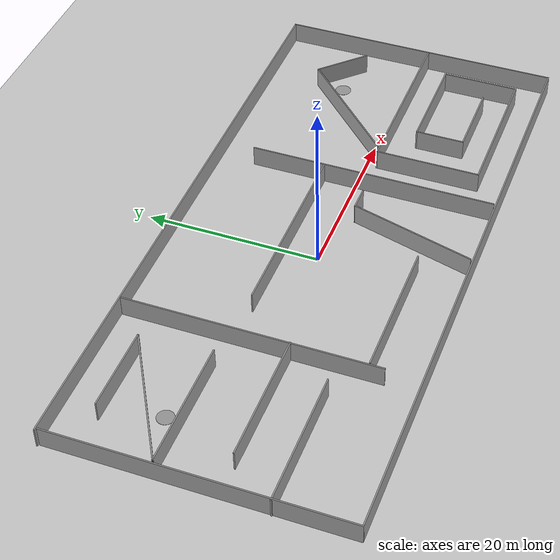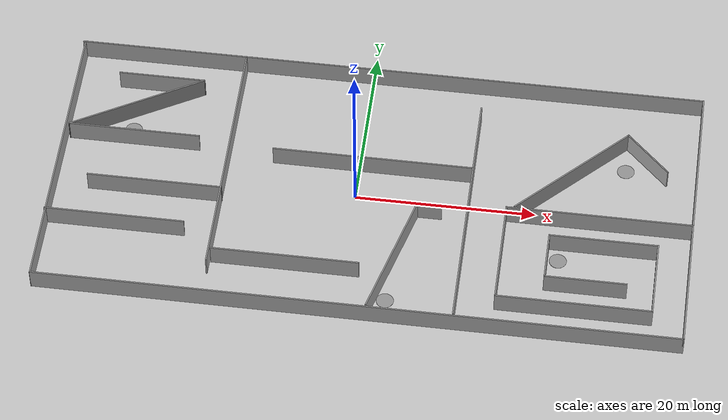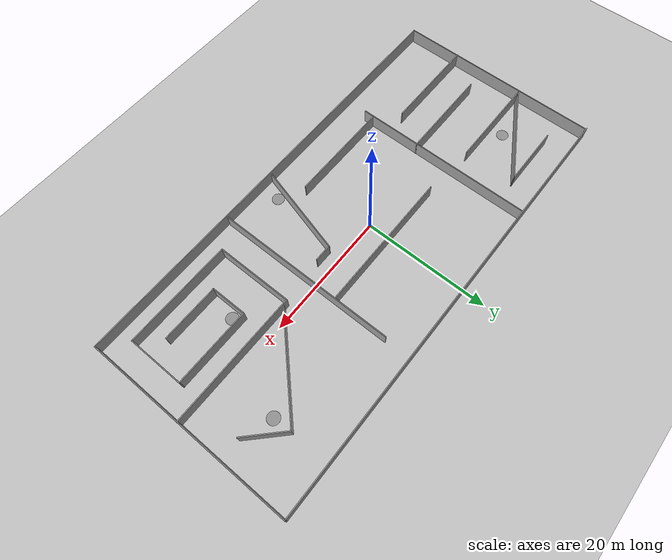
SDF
<sdf version="1.6">
 <world name="default">
  <light name="sun" type="directional">
   <pose>0 0 10 0 -0 0</pose>
   <diffuse>0.8 0.8 0.8 1</diffuse>
   <specular>0.2 0.2 0.2 1</specular>
   <attenuation>
    <range>1000</range>
    <constant>0.9</constant>
    <linear>0.01</linear>
    <quadratic>0.001</quadratic>
   </attenuation>
   <direction>-0.5 0.1 -0.9</direction>
  </light>
  <model name="ground_plane">
   <static>1</static>
   <link name="link">
    <collision name="collision">
     <geometry><plane><normal>0 0 1</normal><size>100 100</size></plane></geometry>
     <surface>
      <contact><collide_bitmask>65535</collide_bitmask></contact>
      <friction><ode><mu>100</mu><mu2>50</mu2></ode></friction>
     </surface>
    </collision>
    <visual name="visual">
     <cast_shadows>0</cast_shadows>
     <geometry><plane><normal>0 0 1</normal><size>100 100</size></plane></geometry>
     <material>
      <script><uri>file://media/materials/scripts/gazebo.material</uri><name>Gazebo/Grey</name></script>
     </material>
    </visual>
   </link>
  </model>
  <gravity>0 0 -9.8</gravity>
  <magnetic_field>6e-06 2.3e-05 -4.2e-05</magnetic_field>
  <atmosphere type="adiabatic"/>
  <physics name="default_physics" default="0" type="ode">
   <max_step_size>0.001</max_step_size>
   <real_time_factor>1</real_time_factor>
   <real_time_update_rate>1000</real_time_update_rate>
  </physics>
  <scene><ambient>0.4 0.4 0.4 1</ambient><background>0.7 0.7 0.7 1</background><shadows>1</shadows></scene>
  <audio><device>default</device></audio>
  <spherical_coordinates>
   <surface_model>EARTH_WGS84</surface_model>
   <latitude_deg>0</latitude_deg>
   <longitude_deg>0</longitude_deg>
   <elevation>0</elevation>
   <heading_deg>0</heading_deg>
  </spherical_coordinates>
  <model name="practice_base">
   <pose>1.95086 0.063622 0 0 -0 0</pose>
   <link name="Wall_0">
    <collision name="Wall_0_Collision">
     <geometry><box><size>33 0.15 2.5</size></box></geometry>
     <pose>0 0 1.25 0 -0 0</pose>
    </collision>
    <visual name="Wall_0_Visual">
     <pose>0 0 1.25 0 -0 0</pose>
     <geometry><box><size>33 0.15 2.5</size></box></geometry>
     <material>
      <script><uri>file://media/materials/scripts/gazebo.material</uri><name>Gazebo/Grey</name></script>
      <ambient>1 1 1 1</ambient>
     </material>
     <meta><layer>0</layer></meta>
    </visual>
    <pose>-35.0767 -0.125 0 0 -0 -1.5708</pose>
   </link>
   <link name="Wall_1">
    <collision name="Wall_1_Collision">
     <geometry><box><size>70.5 0.15 2.5</size></box></geometry>
     <pose>0 0 1.25 0 -0 0</pose>
    </collision>
    <visual name="Wall_1_Visual">
     <pose>0 0 1.25 0 -0 0</pose>
     <geometry><box><size>70.5 0.15 2.5</size></box></geometry>
     <material>
      <script><uri>file://media/materials/scripts/gazebo.material</uri><name>Gazebo/Grey</name></script>
      <ambient>1 1 1 1</ambient>
     </material>
     <meta><layer>0</layer></meta>
    </visual>
    <pose>0.098313 -16.55 0 0 -0 0</pose>
   </link>
   <link name="Wall_11">
    <collision name="Wall_11_Collision">
     <geometry><box><size>14.75 0.15 2.5</size></box></geometry>
     <pose>0 0 1.25 0 -0 0</pose>
    </collision>
    <visual name="Wall_11_Visual">
     <pose>0 0 1.25 0 -0 0</pose>
     <geometry><box><size>14.75 0.15 2.5</size></box></geometry>
     <material>
      <script><uri>file://media/materials/scripts/gazebo.material</uri><name>Gazebo/Grey</name></script>
      <ambient>1 1 1 1</ambient>
     </material>
     <meta><layer>0</layer></meta>
    </visual>
    <pose>-27.3925 4.41999 0 0 -0 0</pose>
   </link>
   <link name="Wall_13">
    <collision name="Wall_13_Collision">
     <geometry><box><size>15 0.15 2.5</size></box></geometry>
     <pose>0 0 1.25 0 -0 0</pose>
    </collision>
    <visual name="Wall_13_Visual">
     <pose>0 0 1.25 0 -0 0</pose>
     <geometry><box><size>15 0.15 2.5</size></box></geometry>
     <material>
      <script><uri>file://media/materials/scripts/gazebo.material</uri><name>Gazebo/Grey</name></script>
      <ambient>1 1 1 1</ambient>
     </material>
     <meta><layer>0</layer></meta>
    </visual>
    <pose>-23.9329 -2.44345 0 0 -0 3.14159</pose>
   </link>
   <link name="Wall_15">
    <collision name="Wall_15_Collision">
     <geometry><box><size>15.5 0.15 2.5</size></box></geometry>
     <pose>0 0 1.25 0 -0 0</pose>
    </collision>
    <visual name="Wall_15_Visual">
     <pose>0 0 1.25 0 -0 0</pose>
     <geometry><box><size>15.5 0.15 2.5</size></box></geometry>
     <material>
      <script><uri>file://media/materials/scripts/gazebo.material</uri><name>Gazebo/Grey</name></script>
      <ambient>1 1 1 1</ambient>
     </material>
     <meta><layer>0</layer></meta>
    </visual>
    <pose>-27.5128 -7.67947 0 0 -0 0</pose>
   </link>
   <link name="Wall_17">
    <collision name="Wall_17_Collision">
     <geometry><box><size>28.75 0.15 2.5</size></box></geometry>
     <pose>0 0 1.25 0 -0 0</pose>
    </collision>
    <visual name="Wall_17_Visual">
     <pose>0 0 1.25 0 -0 0</pose>
     <geometry><box><size>28.75 0.15 2.5</size></box></geometry>
     <material>
      <script><uri>file://media/materials/scripts/gazebo.material</uri><name>Gazebo/Grey</name></script>
      <ambient>1 1 1 1</ambient>
     </material>
     <meta><layer>0</layer></meta>
    </visual>
    <pose>10.6628 -1.94107 0 0 -0 1.5708</pose>
   </link>
   <link name="Wall_19">
    <collision name="Wall_19_Collision">
     <geometry><box><size>15 0.15 2.5</size></box></geometry>
     <pose>0 0 1.25 0 -0 0</pose>
    </collision>
    <visual name="Wall_19_Visual">
     <pose>0 0 1.25 0 -0 0</pose>
     <geometry><box><size>15 0.15 2.5</size></box></geometry>
     <material>
      <script><uri>file://media/materials/scripts/gazebo.material</uri><name>Gazebo/Grey</name></script>
      <ambient>1 1 1 1</ambient>
     </material>
     <meta><layer>0</layer></meta>
    </visual>
    <pose>3.2446 -9.06907 0 0 -0 1.309</pose>
   </link>
   <link name="Wall_2">
    <collision name="Wall_2_Collision">
     <geometry><box><size>33.25 0.15 2.5</size></box></geometry>
     <pose>0 0 1.25 0 -0 0</pose>
    </collision>
    <visual name="Wall_2_Visual">
     <pose>0 0 1.25 0 -0 0</pose>
     <geometry><box><size>33.25 0.15 2.5</size></box></geometry>
     <material>
      <script><uri>file://media/materials/scripts/gazebo.material</uri><name>Gazebo/Grey</name></script>
      <ambient>1 1 1 1</ambient>
     </material>
     <meta><layer>0</layer></meta>
    </visual>
    <pose>35.2733 0 0 0 -0 1.5708</pose>
   </link>
   <link name="Wall_20">
    <collision name="Wall_20_Collision">
     <geometry><box><size>2.75 0.15 2.5</size></box></geometry>
     <pose>0 0 1.25 0 -0 0</pose>
    </collision>
    <visual name="Wall_20_Visual">
     <pose>0 0 1.25 0 -0 0</pose>
     <geometry><box><size>2.75 0.15 2.5</size></box></geometry>
     <material>
      <script><uri>file://media/materials/scripts/gazebo.material</uri><name>Gazebo/Grey</name></script>
      <ambient>1 1 1 1</ambient>
     </material>
     <meta><layer>0</layer></meta>
    </visual>
    <pose>6.46633 -1.89707 0 0 -0 0</pose>
   </link>
   <link name="Wall_22">
    <collision name="Wall_22_Collision">
     <geometry><box><size>16.25 0.15 2.5</size></box></geometry>
     <pose>0 0 1.25 0 -0 0</pose>
    </collision>
    <visual name="Wall_22_Visual">
     <pose>0 0 1.25 0 -0 0</pose>
     <geometry><box><size>16.25 0.15 2.5</size></box></geometry>
     <material>
      <script><uri>file://media/materials/scripts/gazebo.material</uri><name>Gazebo/Grey</name></script>
      <ambient>1 1 1 1</ambient>
     </material>
     <meta><layer>0</layer></meta>
    </visual>
    <pose>-8.24564 -10.8635 0 0 -0 0</pose>
   </link>
   <link name="Wall_24">
    <collision name="Wall_24_Collision">
     <geometry><box><size>22.25 0.15 2.5</size></box></geometry>
     <pose>0 0 1.25 0 -0 0</pose>
    </collision>
    <visual name="Wall_24_Visual">
     <pose>0 0 1.25 0 -0 0</pose>
     <geometry><box><size>22.25 0.15 2.5</size></box></geometry>
     <material>
      <script><uri>file://media/materials/scripts/gazebo.material</uri><name>Gazebo/Grey</name></script>
      <ambient>1 1 1 1</ambient>
     </material>
     <meta><layer>0</layer></meta>
    </visual>
    <pose>-0.52871 3.71242 0 0 -0 3.14159</pose>
   </link>
   <link name="Wall_26">
    <collision name="Wall_26_Collision">
     <geometry><box><size>20.5 0.15 2.5</size></box></geometry>
     <pose>0 0 1.25 0 -0 0</pose>
    </collision>
    <visual name="Wall_26_Visual">
     <pose>0 0 1.25 0 -0 0</pose>
     <geometry><box><size>20.5 0.15 2.5</size></box></geometry>
     <material>
      <script><uri>file://media/materials/scripts/gazebo.material</uri><name>Gazebo/Grey</name></script>
      <ambient>1 1 1 1</ambient>
     </material>
     <meta><layer>0</layer></meta>
    </visual>
    <pose>25.0405 -1.24058 0 0 -0 3.14159</pose>
   </link>
   <link name="Wall_27">
    <collision name="Wall_27_Collision">
     <geometry><box><size>12.25 0.15 2.5</size></box></geometry>
     <pose>0 0 1.25 0 -0 0</pose>
    </collision>
    <visual name="Wall_27_Visual">
     <pose>0 0 1.25 0 -0 0</pose>
     <geometry><box><size>12.25 0.15 2.5</size></box></geometry>
     <material>
      <script><uri>file://media/materials/scripts/gazebo.material</uri><name>Gazebo/Grey</name></script>
      <ambient>1 1 1 1</ambient>
     </material>
     <meta><layer>0</layer></meta>
    </visual>
    <pose>14.8655 -7.29058 0 0 -0 -1.5708</pose>
   </link>
   <link name="Wall_28">
    <collision name="Wall_28_Collision">
     <geometry><box><size>17 0.15 2.5</size></box></geometry>
     <pose>0 0 1.25 0 -0 0</pose>
    </collision>
    <visual name="Wall_28_Visual">
     <pose>0 0 1.25 0 -0 0</pose>
     <geometry><box><size>17 0.15 2.5</size></box></geometry>
     <material>
      <script><uri>file://media/materials/scripts/gazebo.material</uri><name>Gazebo/Grey</name></script>
      <ambient>1 1 1 1</ambient>
     </material>
     <meta><layer>0</layer></meta>
    </visual>
    <pose>23.2905 -13.3406 0 0 -0 0</pose>
   </link>
   <link name="Wall_29">
    <collision name="Wall_29_Collision">
     <geometry><box><size>9 0.15 2.5</size></box></geometry>
     <pose>0 0 1.25 0 -0 0</pose>
    </collision>
    <visual name="Wall_29_Visual">
     <pose>0 0 1.25 0 -0 0</pose>
     <geometry><box><size>9 0.15 2.5</size></box></geometry>
     <material>
      <script><uri>file://media/materials/scripts/gazebo.material</uri><name>Gazebo/Grey</name></script>
      <ambient>1 1 1 1</ambient>
     </material>
     <meta><layer>0</layer></meta>
    </visual>
    <pose>31.7155 -8.91558 0 0 -0 1.5708</pose>
   </link>
   <link name="Wall_30">
    <collision name="Wall_30_Collision">
     <geometry><box><size>12 0.15 2.5</size></box></geometry>
     <pose>0 0 1.25 0 -0 0</pose>
    </collision>
    <visual name="Wall_30_Visual">
     <pose>0 0 1.25 0 -0 0</pose>
     <geometry><box><size>12 0.15 2.5</size></box></geometry>
     <material>
      <script><uri>file://media/materials/scripts/gazebo.material</uri><name>Gazebo/Grey</name></script>
      <ambient>1 1 1 1</ambient>
     </material>
     <meta><layer>0</layer></meta>
    </visual>
    <pose>25.7905 -4.49058 0 0 -0 3.14159</pose>
   </link>
   <link name="Wall_31">
    <collision name="Wall_31_Collision">
     <geometry><box><size>5.75 0.15 2.5</size></box></geometry>
     <pose>0 0 1.25 0 -0 0</pose>
    </collision>
    <visual name="Wall_31_Visual">
     <pose>0 0 1.25 0 -0 0</pose>
     <geometry><box><size>5.75 0.15 2.5</size></box></geometry>
     <material>
      <script><uri>file://media/materials/scripts/gazebo.material</uri><name>Gazebo/Grey</name></script>
      <ambient>1 1 1 1</ambient>
     </material>
     <meta><layer>0</layer></meta>
    </visual>
    <pose>19.8655 -7.29058 0 0 -0 -1.5708</pose>
   </link>
   <link name="Wall_32">
    <collision name="Wall_32_Collision">
     <geometry><box><size>9 0.15 2.5</size></box></geometry>
     <pose>0 0 1.25 0 -0 0</pose>
    </collision>
    <visual name="Wall_32_Visual">
     <pose>0 0 1.25 0 -0 0</pose>
     <geometry><box><size>9 0.15 2.5</size></box></geometry>
     <material>
      <script><uri>file://media/materials/scripts/gazebo.material</uri><name>Gazebo/Grey</name></script>
      <ambient>1 1 1 1</ambient>
     </material>
     <meta><layer>0</layer></meta>
    </visual>
    <pose>24.2905 -10.0906 0 0 -0 0</pose>
   </link>
   <link name="Wall_34">
    <collision name="Wall_34_Collision">
     <geometry><box><size>16.5 0.15 2.5</size></box></geometry>
     <pose>0 0 1.25 0 -0 0</pose>
    </collision>
    <visual name="Wall_34_Visual">
     <pose>0 0 1.25 0 -0 0</pose>
     <geometry><box><size>16.5 0.15 2.5</size></box></geometry>
     <material>
      <script><uri>file://media/materials/scripts/gazebo.material</uri><name>Gazebo/Grey</name></script>
      <ambient>1 1 1 1</ambient>
     </material>
     <meta><layer>0</layer></meta>
    </visual>
    <pose>21.5379 4.75229 0 0 -0 0.785398</pose>
   </link>
   <link name="Wall_35">
    <collision name="Wall_35_Collision">
     <geometry><box><size>6.75 0.15 2.5</size></box></geometry>
     <pose>0 0 1.25 0 -0 0</pose>
    </collision>
    <visual name="Wall_35_Visual">
     <pose>0 0 1.25 0 -0 0</pose>
     <geometry><box><size>6.75 0.15 2.5</size></box></geometry>
     <material>
      <script><uri>file://media/materials/scripts/gazebo.material</uri><name>Gazebo/Grey</name></script>
      <ambient>1 1 1 1</ambient>
     </material>
     <meta><layer>0</layer></meta>
    </visual>
    <pose>29.652 8.19944 0 0 -0 -0.785398</pose>
   </link>
   <link name="Wall_4">
    <collision name="Wall_4_Collision">
     <geometry><box><size>70.5 0.15 2.5</size></box></geometry>
     <pose>0 0 1.25 0 -0 0</pose>
    </collision>
    <visual name="Wall_4_Visual">
     <pose>0 0 1.25 0 -0 0</pose>
     <geometry><box><size>70.5 0.15 2.5</size></box></geometry>
     <material>
      <script><uri>file://media/materials/scripts/gazebo.material</uri><name>Gazebo/Grey</name></script>
      <ambient>1 1 1 1</ambient>
     </material>
     <meta><layer>0</layer></meta>
    </visual>
    <pose>-0.098311 16.5433 0 0 -0 0</pose>
   </link>
   <link name="Wall_6">
    <collision name="Wall_6_Collision">
     <geometry><box><size>29 0.15 2.5</size></box></geometry>
     <pose>0 0 1.25 0 -0 0</pose>
    </collision>
    <visual name="Wall_6_Visual">
     <pose>0 0 1.25 0 -0 0</pose>
     <geometry><box><size>29 0.15 2.5</size></box></geometry>
     <material>
      <script><uri>file://media/materials/scripts/gazebo.material</uri><name>Gazebo/Grey</name></script>
      <ambient>1 1 1 1</ambient>
     </material>
     <meta><layer>0</layer></meta>
    </visual>
    <pose>-16.5581 1.95561 0 0 -0 -1.5708</pose>
   </link>
   <link name="Wall_8">
    <collision name="Wall_8_Collision">
     <geometry><box><size>16.25 0.15 2.5</size></box></geometry>
     <pose>0 0 1.25 0 -0 0</pose>
    </collision>
    <visual name="Wall_8_Visual">
     <pose>0 0 1.25 0 -0 0</pose>
     <geometry><box><size>16.25 0.15 2.5</size></box></geometry>
     <material>
      <script><uri>file://media/materials/scripts/gazebo.material</uri><name>Gazebo/Grey</name></script>
      <ambient>1 1 1 1</ambient>
     </material>
     <meta><layer>0</layer></meta>
    </visual>
    <pose>-27.721 8.44499 0 0 -0 0.523599</pose>
   </link>
   <link name="Wall_9">
    <collision name="Wall_9_Collision">
     <geometry><box><size>9.75 0.15 2.5</size></box></geometry>
     <pose>0 0 1.25 0 -0 0</pose>
    </collision>
    <visual name="Wall_9_Visual">
     <pose>0 0 1.25 0 -0 0</pose>
     <geometry><box><size>9.75 0.15 2.5</size></box></geometry>
     <material>
      <script><uri>file://media/materials/scripts/gazebo.material</uri><name>Gazebo/Grey</name></script>
      <ambient>1 1 1 1</ambient>
     </material>
     <meta><layer>0</layer></meta>
    </visual>
    <pose>-25.5495 12.47 0 0 -0 3.14159</pose>
   </link>
   <static>1</static>
  </model>
  <model name="unit_cylinder">
   <pose>-25.9165 6.43731 0.009378 0 -0 0</pose>
   <link name="link">
    <inertial>
     <mass>1</mass>
     <inertia><ixx>0.145833</ixx><ixy>0</ixy><ixz>0</ixz><iyy>0.145833</iyy><iyz>0</iyz><izz>0.125</izz></inertia>
    </inertial>
    <collision name="collision">
     <geometry><cylinder><radius>0.954015</radius><length>0.018757</length></cylinder></geometry>
    </collision>
    <visual name="visual">
     <geometry><cylinder><radius>0.954015</radius><length>0.018757</length></cylinder></geometry>
     <material>
      <script><name>Gazebo/Grey</name><uri>file://media/materials/scripts/gazebo.material</uri></script>
     </material>
    </visual>
   </link>
  </model>
  <model name="unit_cylinder_clone">
   <pose>5.00973 -13.6753 0.009378 0 -0 0.103014</pose>
   <link name="link">
    <inertial>
     <mass>1</mass>
     <inertia><ixx>0.145833</ixx><ixy>0</ixy><ixz>0</ixz><iyy>0.145833</iyy><iyz>0</iyz><izz>0.125</izz></inertia>
    </inertial>
    <collision name="collision">
     <geometry><cylinder><radius>0.954015</radius><length>0.0187567</length></cylinder></geometry>
    </collision>
    <visual name="visual">
     <geometry><cylinder><radius>0.954015</radius><length>0.0187567</length></cylinder></geometry>
     <material>
      <script><name>Gazebo/Grey</name><uri>file://media/materials/scripts/gazebo.material</uri></script>
     </material>
    </visual>
   </link>
  </model>
  <model name="unit_cylinder_clone_clone_0">
   <pose>29.3605 7.36004 0.009378 0 -0 0</pose>
   <link name="link">
    <inertial>
     <mass>1</mass>
     <inertia><ixx>0.145833</ixx><ixy>0</ixy><ixz>0</ixz><iyy>0.145833</iyy><iyz>0</iyz><izz>0.125</izz></inertia>
    </inertial>
    <collision name="collision">
     <geometry><cylinder><radius>0.954015</radius><length>0.0187567</length></cylinder></geometry>
    </collision>
    <visual name="visual">
     <geometry><cylinder><radius>0.954015</radius><length>0.0187567</length></cylinder></geometry>
     <material>
      <script><name>Gazebo/Grey</name><uri>file://media/materials/scripts/gazebo.material</uri></script>
     </material>
    </visual>
   </link>
  </model>
  <model name="unit_cylinder_clone_clone_0_clone">
   <pose>23 -6 0.009378 0 -0 0</pose>
   <link name="link">
    <inertial>
     <mass>1</mass>
     <inertia><ixx>0.145833</ixx><ixy>0</ixy><ixz>0</ixz><iyy>0.145833</iyy><iyz>0</iyz><izz>0.125</izz></inertia>
    </inertial>
    <collision name="collision">
     <geometry><cylinder><radius>0.954015</radius><length>0.0187567</length></cylinder></geometry>
    </collision>
    <visual name="visual">
     <geometry><cylinder><radius>0.954015</radius><length>0.0187567</length></cylinder></geometry>
     <material>
      <script><name>Gazebo/Grey</name><uri>file://media/materials/scripts/gazebo.material</uri></script>
     </material>
    </visual>
   </link>
  </model>
 </world>
</sdf>
